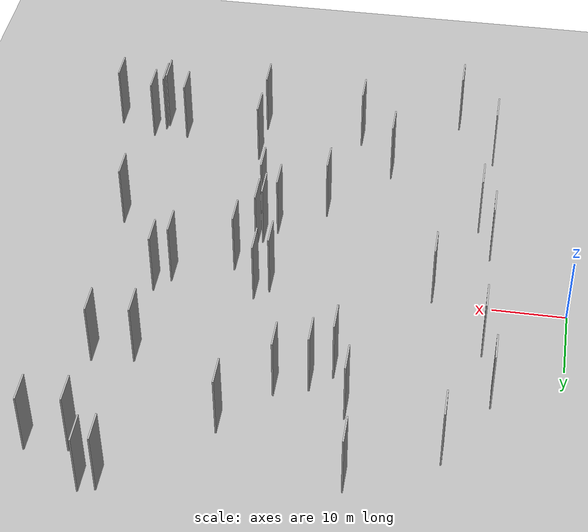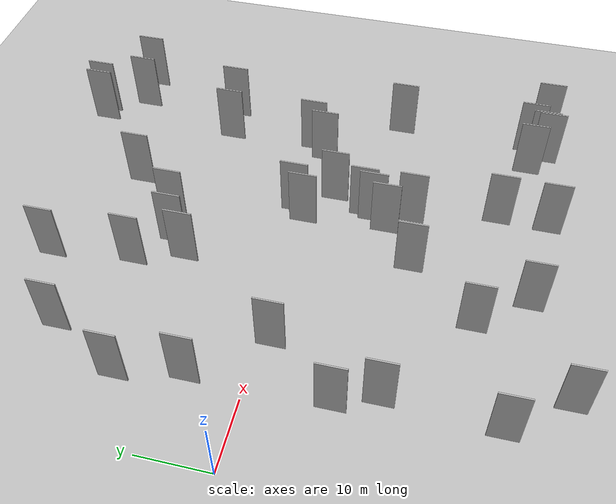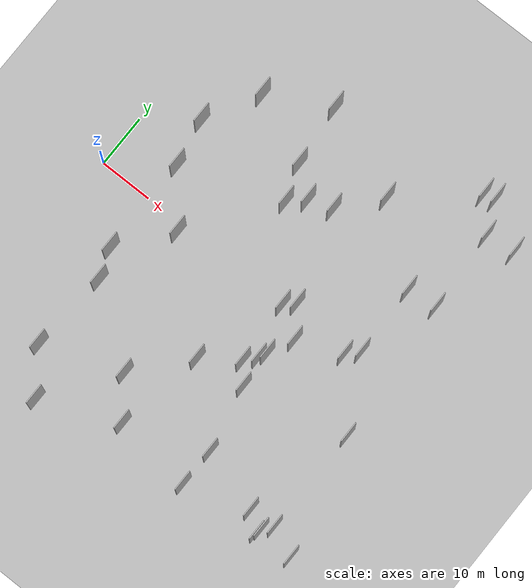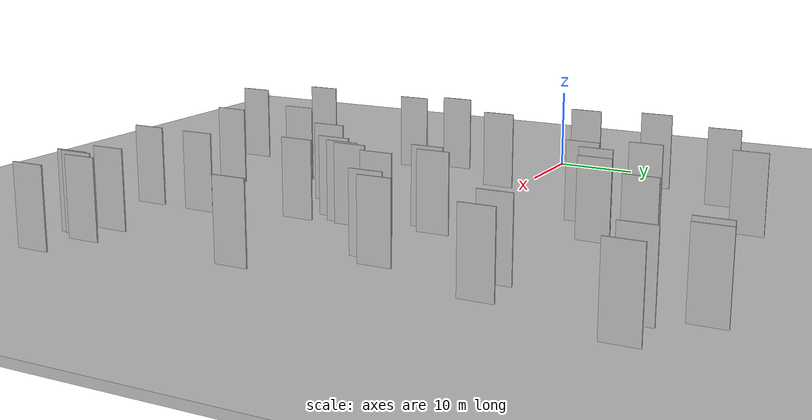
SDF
<?xml version="1.0" encoding="utf-8"?>

<sdf version="1.6">

   <world name="default">

      <gui fullscreen="0">

         <camera name="user_camera">

            <pose>-15 0 4.57585 0 0 0</pose>

            <view_controller>orbit</view_controller>

         </camera>

      </gui>

      <scene>

         <sky>

           <clouds>

             <speed>12</speed>

           </clouds>

         </sky>

         <ambient>0.4 0.4 0.4 1</ambient>

         <background>0.7 0.7 0.7 1</background>

         <shadows>1</shadows>

      </scene>

      <gravity>0 0 -9.8066</gravity>

      <magnetic_field>6e-06 2.3e-05 -4.2e-05</magnetic_field>

      <physics default="0" name="default_physics" type="ode">

         <ode>

            <solver>

               <type>quick</type>

               <iters>10</iters>

               <sor>1.0</sor>

               <use_dynamic_moi_rescaling>0</use_dynamic_moi_rescaling>

            </solver>

            <constraints>

               <cfm>0</cfm>

               <erp>0.2</erp>

               <contact_max_correcting_vel>100</contact_max_correcting_vel>

               <contact_surface_layer>0.001</contact_surface_layer>

            </constraints>

         </ode>

         <max_step_size>0.004</max_step_size>

         <real_time_factor>1</real_time_factor>

         <real_time_update_rate>250</real_time_update_rate>

      </physics>

      <light name="sun" type="directional">

         <cast_shadows>1</cast_shadows>

         <pose>0 0 10 0 0 0</pose>

         <diffuse>0.8 0.8 0.8 1</diffuse>

         <specular>0.2 0.2 0.2 1</specular>

         <attenuation>

            <range>1000</range>

            <constant>0.9</constant>

            <linear>0.01</linear>

            <quadratic>0.001</quadratic>

         </attenuation>

         <direction>-0.5 0.1 -0.9</direction>

      </light>

      <include>

         <name>ground_plane_1</name>

         <uri>model://HANNAS_ground_plane</uri>

         <pose>0 0 0  0 0 0</pose>

      </include>

      <include>

         <name>ground_plane_2</name>

         <uri>model://HANNAS_ground_plane</uri>

         <pose>100 0 0  0 0 0</pose>

      </include>

      <model name="HANNAS_wall_1">

         <static>1</static>

         <pose frame="">36.6619 18.0151 0.0 0.000000 0.000000 1.570796</pose>

         <link name="link">

            <pose frame="">0 0 5.00 0 0 0</pose>

            <collision name="collision">

               <geometry>

                  <box>

                     <size>4.00 0.2 10.00</size>

                  </box>

               </geometry>

               <max_contacts>10</max_contacts>

               <surface>

                  <contact>

                     <ode/>

                  </contact>

                  <bounce/>

                  <friction>

                     <torsional>

                        <ode/>

                     </torsional>

                     <ode/>

                  </friction>

               </surface>

            </collision>

            <visual name="visual">

               <cast_shadows>0</cast_shadows>

               <geometry>

                  <box>

                     <size>4.00 0.2 10.00</size>

                  </box>

               </geometry>

               <material>

                  <script>

                     <uri>model://HANNAS_wall/materials/scripts</uri>

                     <uri>model://HANNAS_wall/materials/textures</uri>

                     <name>vrc/HANNAS_wall</name>

                  </script>

               </material>

            </visual>

            <self_collide>0</self_collide>

            <enable_wind>0</enable_wind>

            <kinematic>0</kinematic>

         </link>

      </model>

      <model name="HANNAS_wall_2">

         <static>1</static>

         <pose frame="">55.3624 36.1691 0.0 0.000000 0.000000 1.570796</pose>

         <link name="link">

            <pose frame="">0 0 5.00 0 0 0</pose>

            <collision name="collision">

               <geometry>

                  <box>

                     <size>4.00 0.2 10.00</size>

                  </box>

               </geometry>

               <max_contacts>10</max_contacts>

               <surface>

                  <contact>

                     <ode/>

                  </contact>

                  <bounce/>

                  <friction>

                     <torsional>

                        <ode/>

                     </torsional>

                     <ode/>

                  </friction>

               </surface>

            </collision>

            <visual name="visual">

               <cast_shadows>0</cast_shadows>

               <geometry>

                  <box>

                     <size>4.00 0.2 10.00</size>

                  </box>

               </geometry>

               <material>

                  <script>

                     <uri>model://HANNAS_wall/materials/scripts</uri>

                     <uri>model://HANNAS_wall/materials/textures</uri>

                     <name>vrc/HANNAS_wall</name>

                  </script>

               </material>

            </visual>

            <self_collide>0</self_collide>

            <enable_wind>0</enable_wind>

            <kinematic>0</kinematic>

         </link>

      </model>

      <model name="HANNAS_wall_3">

         <static>1</static>

         <pose frame="">43.7757 -15.6567 0.0 0.000000 0.000000 1.570796</pose>

         <link name="link">

            <pose frame="">0 0 5.00 0 0 0</pose>

            <collision name="collision">

               <geometry>

                  <box>

                     <size>4.00 0.2 10.00</size>

                  </box>

               </geometry>

               <max_contacts>10</max_contacts>

               <surface>

                  <contact>

                     <ode/>

                  </contact>

                  <bounce/>

                  <friction>

                     <torsional>

                        <ode/>

                     </torsional>

                     <ode/>

                  </friction>

               </surface>

            </collision>

            <visual name="visual">

               <cast_shadows>0</cast_shadows>

               <geometry>

                  <box>

                     <size>4.00 0.2 10.00</size>

                  </box>

               </geometry>

               <material>

                  <script>

                     <uri>model://HANNAS_wall/materials/scripts</uri>

                     <uri>model://HANNAS_wall/materials/textures</uri>

                     <name>vrc/HANNAS_wall</name>

                  </script>

               </material>

            </visual>

            <self_collide>0</self_collide>

            <enable_wind>0</enable_wind>

            <kinematic>0</kinematic>

         </link>

      </model>

      <model name="HANNAS_wall_4">

         <static>1</static>

         <pose frame="">62.9942 -11.3751 0.0 0.000000 0.000000 1.570796</pose>

         <link name="link">

            <pose frame="">0 0 5.00 0 0 0</pose>

            <collision name="collision">

               <geometry>

                  <box>

                     <size>4.00 0.2 10.00</size>

                  </box>

               </geometry>

               <max_contacts>10</max_contacts>

               <surface>

                  <contact>

                     <ode/>

                  </contact>

                  <bounce/>

                  <friction>

                     <torsional>

                        <ode/>

                     </torsional>

                     <ode/>

                  </friction>

               </surface>

            </collision>

            <visual name="visual">

               <cast_shadows>0</cast_shadows>

               <geometry>

                  <box>

                     <size>4.00 0.2 10.00</size>

                  </box>

               </geometry>

               <material>

                  <script>

                     <uri>model://HANNAS_wall/materials/scripts</uri>

                     <uri>model://HANNAS_wall/materials/textures</uri>

                     <name>vrc/HANNAS_wall</name>

                  </script>

               </material>

            </visual>

            <self_collide>0</self_collide>

            <enable_wind>0</enable_wind>

            <kinematic>0</kinematic>

         </link>

      </model>

      <model name="HANNAS_wall_5">

         <static>1</static>

         <pose frame="">10.9348 -11.1061 0.0 0.000000 0.000000 1.570796</pose>

         <link name="link">

            <pose frame="">0 0 5.00 0 0 0</pose>

            <collision name="collision">

               <geometry>

                  <box>

                     <size>4.00 0.2 10.00</size>

                  </box>

               </geometry>

               <max_contacts>10</max_contacts>

               <surface>

                  <contact>

                     <ode/>

                  </contact>

                  <bounce/>

                  <friction>

                     <torsional>

                        <ode/>

                     </torsional>

                     <ode/>

                  </friction>

               </surface>

            </collision>

            <visual name="visual">

               <cast_shadows>0</cast_shadows>

               <geometry>

                  <box>

                     <size>4.00 0.2 10.00</size>

                  </box>

               </geometry>

               <material>

                  <script>

                     <uri>model://HANNAS_wall/materials/scripts</uri>

                     <uri>model://HANNAS_wall/materials/textures</uri>

                     <name>vrc/HANNAS_wall</name>

                  </script>

               </material>

            </visual>

            <self_collide>0</self_collide>

            <enable_wind>0</enable_wind>

            <kinematic>0</kinematic>

         </link>

      </model>

      <model name="HANNAS_wall_6">

         <static>1</static>

         <pose frame="">32.2538 16.5219 0.0 0.000000 0.000000 1.570796</pose>

         <link name="link">

            <pose frame="">0 0 5.00 0 0 0</pose>

            <collision name="collision">

               <geometry>

                  <box>

                     <size>4.00 0.2 10.00</size>

                  </box>

               </geometry>

               <max_contacts>10</max_contacts>

               <surface>

                  <contact>

                     <ode/>

                  </contact>

                  <bounce/>

                  <friction>

                     <torsional>

                        <ode/>

                     </torsional>

                     <ode/>

                  </friction>

               </surface>

            </collision>

            <visual name="visual">

               <cast_shadows>0</cast_shadows>

               <geometry>

                  <box>

                     <size>4.00 0.2 10.00</size>

                  </box>

               </geometry>

               <material>

                  <script>

                     <uri>model://HANNAS_wall/materials/scripts</uri>

                     <uri>model://HANNAS_wall/materials/textures</uri>

                     <name>vrc/HANNAS_wall</name>

                  </script>

               </material>

            </visual>

            <self_collide>0</self_collide>

            <enable_wind>0</enable_wind>

            <kinematic>0</kinematic>

         </link>

      </model>

      <model name="HANNAS_wall_7">

         <static>1</static>

         <pose frame="">62.9311 -31.2098 0.0 0.000000 0.000000 1.570796</pose>

         <link name="link">

            <pose frame="">0 0 5.00 0 0 0</pose>

            <collision name="collision">

               <geometry>

                  <box>

                     <size>4.00 0.2 10.00</size>

                  </box>

               </geometry>

               <max_contacts>10</max_contacts>

               <surface>

                  <contact>

                     <ode/>

                  </contact>

                  <bounce/>

                  <friction>

                     <torsional>

                        <ode/>

                     </torsional>

                     <ode/>

                  </friction>

               </surface>

            </collision>

            <visual name="visual">

               <cast_shadows>0</cast_shadows>

               <geometry>

                  <box>

                     <size>4.00 0.2 10.00</size>

                  </box>

               </geometry>

               <material>

                  <script>

                     <uri>model://HANNAS_wall/materials/scripts</uri>

                     <uri>model://HANNAS_wall/materials/textures</uri>

                     <name>vrc/HANNAS_wall</name>

                  </script>

               </material>

            </visual>

            <self_collide>0</self_collide>

            <enable_wind>0</enable_wind>

            <kinematic>0</kinematic>

         </link>

      </model>

      <model name="HANNAS_wall_8">

         <static>1</static>

         <pose frame="">61.4429 -33.0140 0.0 0.000000 0.000000 1.570796</pose>

         <link name="link">

            <pose frame="">0 0 5.00 0 0 0</pose>

            <collision name="collision">

               <geometry>

                  <box>

                     <size>4.00 0.2 10.00</size>

                  </box>

               </geometry>

               <max_contacts>10</max_contacts>

               <surface>

                  <contact>

                     <ode/>

                  </contact>

                  <bounce/>

                  <friction>

                     <torsional>

                        <ode/>

                     </torsional>

                     <ode/>

                  </friction>

               </surface>

            </collision>

            <visual name="visual">

               <cast_shadows>0</cast_shadows>

               <geometry>

                  <box>

                     <size>4.00 0.2 10.00</size>

                  </box>

               </geometry>

               <material>

                  <script>

                     <uri>model://HANNAS_wall/materials/scripts</uri>

                     <uri>model://HANNAS_wall/materials/textures</uri>

                     <name>vrc/HANNAS_wall</name>

                  </script>

               </material>

            </visual>

            <self_collide>0</self_collide>

            <enable_wind>0</enable_wind>

            <kinematic>0</kinematic>

         </link>

      </model>

      <model name="HANNAS_wall_9">

         <static>1</static>

         <pose frame="">17.4515 -39.3965 0.0 0.000000 0.000000 1.570796</pose>

         <link name="link">

            <pose frame="">0 0 5.00 0 0 0</pose>

            <collision name="collision">

               <geometry>

                  <box>

                     <size>4.00 0.2 10.00</size>

                  </box>

               </geometry>

               <max_contacts>10</max_contacts>

               <surface>

                  <contact>

                     <ode/>

                  </contact>

                  <bounce/>

                  <friction>

                     <torsional>

                        <ode/>

                     </torsional>

                     <ode/>

                  </friction>

               </surface>

            </collision>

            <visual name="visual">

               <cast_shadows>0</cast_shadows>

               <geometry>

                  <box>

                     <size>4.00 0.2 10.00</size>

                  </box>

               </geometry>

               <material>

                  <script>

                     <uri>model://HANNAS_wall/materials/scripts</uri>

                     <uri>model://HANNAS_wall/materials/textures</uri>

                     <name>vrc/HANNAS_wall</name>

                  </script>

               </material>

            </visual>

            <self_collide>0</self_collide>

            <enable_wind>0</enable_wind>

            <kinematic>0</kinematic>

         </link>

      </model>

      <model name="HANNAS_wall_10">

         <static>1</static>

         <pose frame="">29.4541 13.9202 0.0 0.000000 0.000000 1.570796</pose>

         <link name="link">

            <pose frame="">0 0 5.00 0 0 0</pose>

            <collision name="collision">

               <geometry>

                  <box>

                     <size>4.00 0.2 10.00</size>

                  </box>

               </geometry>

               <max_contacts>10</max_contacts>

               <surface>

                  <contact>

                     <ode/>

                  </contact>

                  <bounce/>

                  <friction>

                     <torsional>

                        <ode/>

                     </torsional>

                     <ode/>

                  </friction>

               </surface>

            </collision>

            <visual name="visual">

               <cast_shadows>0</cast_shadows>

               <geometry>

                  <box>

                     <size>4.00 0.2 10.00</size>

                  </box>

               </geometry>

               <material>

                  <script>

                     <uri>model://HANNAS_wall/materials/scripts</uri>

                     <uri>model://HANNAS_wall/materials/textures</uri>

                     <name>vrc/HANNAS_wall</name>

                  </script>

               </material>

            </visual>

            <self_collide>0</self_collide>

            <enable_wind>0</enable_wind>

            <kinematic>0</kinematic>

         </link>

      </model>

      <model name="HANNAS_wall_11">

         <static>1</static>

         <pose frame="">55.9009 1.5364 0.0 0.000000 0.000000 1.570796</pose>

         <link name="link">

            <pose frame="">0 0 5.00 0 0 0</pose>

            <collision name="collision">

               <geometry>

                  <box>

                     <size>4.00 0.2 10.00</size>

                  </box>

               </geometry>

               <max_contacts>10</max_contacts>

               <surface>

                  <contact>

                     <ode/>

                  </contact>

                  <bounce/>

                  <friction>

                     <torsional>

                        <ode/>

                     </torsional>

                     <ode/>

                  </friction>

               </surface>

            </collision>

            <visual name="visual">

               <cast_shadows>0</cast_shadows>

               <geometry>

                  <box>

                     <size>4.00 0.2 10.00</size>

                  </box>

               </geometry>

               <material>

                  <script>

                     <uri>model://HANNAS_wall/materials/scripts</uri>

                     <uri>model://HANNAS_wall/materials/textures</uri>

                     <name>vrc/HANNAS_wall</name>

                  </script>

               </material>

            </visual>

            <self_collide>0</self_collide>

            <enable_wind>0</enable_wind>

            <kinematic>0</kinematic>

         </link>

      </model>

      <model name="HANNAS_wall_12">

         <static>1</static>

         <pose frame="">40.2201 -0.5171 0.0 0.000000 0.000000 1.570796</pose>

         <link name="link">

            <pose frame="">0 0 5.00 0 0 0</pose>

            <collision name="collision">

               <geometry>

                  <box>

                     <size>4.00 0.2 10.00</size>

                  </box>

               </geometry>

               <max_contacts>10</max_contacts>

               <surface>

                  <contact>

                     <ode/>

                  </contact>

                  <bounce/>

                  <friction>

                     <torsional>

                        <ode/>

                     </torsional>

                     <ode/>

                  </friction>

               </surface>

            </collision>

            <visual name="visual">

               <cast_shadows>0</cast_shadows>

               <geometry>

                  <box>

                     <size>4.00 0.2 10.00</size>

                  </box>

               </geometry>

               <material>

                  <script>

                     <uri>model://HANNAS_wall/materials/scripts</uri>

                     <uri>model://HANNAS_wall/materials/textures</uri>

                     <name>vrc/HANNAS_wall</name>

                  </script>

               </material>

            </visual>

            <self_collide>0</self_collide>

            <enable_wind>0</enable_wind>

            <kinematic>0</kinematic>

         </link>

      </model>

      <model name="HANNAS_wall_13">

         <static>1</static>

         <pose frame="">65.6684 31.3403 0.0 0.000000 0.000000 1.570796</pose>

         <link name="link">

            <pose frame="">0 0 5.00 0 0 0</pose>

            <collision name="collision">

               <geometry>

                  <box>

                     <size>4.00 0.2 10.00</size>

                  </box>

               </geometry>

               <max_contacts>10</max_contacts>

               <surface>

                  <contact>

                     <ode/>

                  </contact>

                  <bounce/>

                  <friction>

                     <torsional>

                        <ode/>

                     </torsional>

                     <ode/>

                  </friction>

               </surface>

            </collision>

            <visual name="visual">

               <cast_shadows>0</cast_shadows>

               <geometry>

                  <box>

                     <size>4.00 0.2 10.00</size>

                  </box>

               </geometry>

               <material>

                  <script>

                     <uri>model://HANNAS_wall/materials/scripts</uri>

                     <uri>model://HANNAS_wall/materials/textures</uri>

                     <name>vrc/HANNAS_wall</name>

                  </script>

               </material>

            </visual>

            <self_collide>0</self_collide>

            <enable_wind>0</enable_wind>

            <kinematic>0</kinematic>

         </link>

      </model>

      <model name="HANNAS_wall_14">

         <static>1</static>

         <pose frame="">42.0989 1.1696 0.0 0.000000 0.000000 1.570796</pose>

         <link name="link">

            <pose frame="">0 0 5.00 0 0 0</pose>

            <collision name="collision">

               <geometry>

                  <box>

                     <size>4.00 0.2 10.00</size>

                  </box>

               </geometry>

               <max_contacts>10</max_contacts>

               <surface>

                  <contact>

                     <ode/>

                  </contact>

                  <bounce/>

                  <friction>

                     <torsional>

                        <ode/>

                     </torsional>

                     <ode/>

                  </friction>

               </surface>

            </collision>

            <visual name="visual">

               <cast_shadows>0</cast_shadows>

               <geometry>

                  <box>

                     <size>4.00 0.2 10.00</size>

                  </box>

               </geometry>

               <material>

                  <script>

                     <uri>model://HANNAS_wall/materials/scripts</uri>

                     <uri>model://HANNAS_wall/materials/textures</uri>

                     <name>vrc/HANNAS_wall</name>

                  </script>

               </material>

            </visual>

            <self_collide>0</self_collide>

            <enable_wind>0</enable_wind>

            <kinematic>0</kinematic>

         </link>

      </model>

      <model name="HANNAS_wall_15">

         <static>1</static>

         <pose frame="">26.4778 -26.4797 0.0 0.000000 0.000000 1.570796</pose>

         <link name="link">

            <pose frame="">0 0 5.00 0 0 0</pose>

            <collision name="collision">

               <geometry>

                  <box>

                     <size>4.00 0.2 10.00</size>

                  </box>

               </geometry>

               <max_contacts>10</max_contacts>

               <surface>

                  <contact>

                     <ode/>

                  </contact>

                  <bounce/>

                  <friction>

                     <torsional>

                        <ode/>

                     </torsional>

                     <ode/>

                  </friction>

               </surface>

            </collision>

            <visual name="visual">

               <cast_shadows>0</cast_shadows>

               <geometry>

                  <box>

                     <size>4.00 0.2 10.00</size>

                  </box>

               </geometry>

               <material>

                  <script>

                     <uri>model://HANNAS_wall/materials/scripts</uri>

                     <uri>model://HANNAS_wall/materials/textures</uri>

                     <name>vrc/HANNAS_wall</name>

                  </script>

               </material>

            </visual>

            <self_collide>0</self_collide>

            <enable_wind>0</enable_wind>

            <kinematic>0</kinematic>

         </link>

      </model>

      <model name="HANNAS_wall_16">

         <static>1</static>

         <pose frame="">46.3663 -27.9325 0.0 0.000000 0.000000 1.570796</pose>

         <link name="link">

            <pose frame="">0 0 5.00 0 0 0</pose>

            <collision name="collision">

               <geometry>

                  <box>

                     <size>4.00 0.2 10.00</size>

                  </box>

               </geometry>

               <max_contacts>10</max_contacts>

               <surface>

                  <contact>

                     <ode/>

                  </contact>

                  <bounce/>

                  <friction>

                     <torsional>

                        <ode/>

                     </torsional>

                     <ode/>

                  </friction>

               </surface>

            </collision>

            <visual name="visual">

               <cast_shadows>0</cast_shadows>

               <geometry>

                  <box>

                     <size>4.00 0.2 10.00</size>

                  </box>

               </geometry>

               <material>

                  <script>

                     <uri>model://HANNAS_wall/materials/scripts</uri>

                     <uri>model://HANNAS_wall/materials/textures</uri>

                     <name>vrc/HANNAS_wall</name>

                  </script>

               </material>

            </visual>

            <self_collide>0</self_collide>

            <enable_wind>0</enable_wind>

            <kinematic>0</kinematic>

         </link>

      </model>

      <model name="HANNAS_wall_17">

         <static>1</static>

         <pose frame="">11.8720 -31.6912 0.0 0.000000 0.000000 1.570796</pose>

         <link name="link">

            <pose frame="">0 0 5.00 0 0 0</pose>

            <collision name="collision">

               <geometry>

                  <box>

                     <size>4.00 0.2 10.00</size>

                  </box>

               </geometry>

               <max_contacts>10</max_contacts>

               <surface>

                  <contact>

                     <ode/>

                  </contact>

                  <bounce/>

                  <friction>

                     <torsional>

                        <ode/>

                     </torsional>

                     <ode/>

                  </friction>

               </surface>

            </collision>

            <visual name="visual">

               <cast_shadows>0</cast_shadows>

               <geometry>

                  <box>

                     <size>4.00 0.2 10.00</size>

                  </box>

               </geometry>

               <material>

                  <script>

                     <uri>model://HANNAS_wall/materials/scripts</uri>

                     <uri>model://HANNAS_wall/materials/textures</uri>

                     <name>vrc/HANNAS_wall</name>

                  </script>

               </material>

            </visual>

            <self_collide>0</self_collide>

            <enable_wind>0</enable_wind>

            <kinematic>0</kinematic>

         </link>

      </model>

      <model name="HANNAS_wall_18">

         <static>1</static>

         <pose frame="">57.9816 -31.4442 0.0 0.000000 0.000000 1.570796</pose>

         <link name="link">

            <pose frame="">0 0 5.00 0 0 0</pose>

            <collision name="collision">

               <geometry>

                  <box>

                     <size>4.00 0.2 10.00</size>

                  </box>

               </geometry>

               <max_contacts>10</max_contacts>

               <surface>

                  <contact>

                     <ode/>

                  </contact>

                  <bounce/>

                  <friction>

                     <torsional>

                        <ode/>

                     </torsional>

                     <ode/>

                  </friction>

               </surface>

            </collision>

            <visual name="visual">

               <cast_shadows>0</cast_shadows>

               <geometry>

                  <box>

                     <size>4.00 0.2 10.00</size>

                  </box>

               </geometry>

               <material>

                  <script>

                     <uri>model://HANNAS_wall/materials/scripts</uri>

                     <uri>model://HANNAS_wall/materials/textures</uri>

                     <name>vrc/HANNAS_wall</name>

                  </script>

               </material>

            </visual>

            <self_collide>0</self_collide>

            <enable_wind>0</enable_wind>

            <kinematic>0</kinematic>

         </link>

      </model>

      <model name="HANNAS_wall_19">

         <static>1</static>

         <pose frame="">27.1454 20.6249 0.0 0.000000 0.000000 1.570796</pose>

         <link name="link">

            <pose frame="">0 0 5.00 0 0 0</pose>

            <collision name="collision">

               <geometry>

                  <box>

                     <size>4.00 0.2 10.00</size>

                  </box>

               </geometry>

               <max_contacts>10</max_contacts>

               <surface>

                  <contact>

                     <ode/>

                  </contact>

                  <bounce/>

                  <friction>

                     <torsional>

                        <ode/>

                     </torsional>

                     <ode/>

                  </friction>

               </surface>

            </collision>

            <visual name="visual">

               <cast_shadows>0</cast_shadows>

               <geometry>

                  <box>

                     <size>4.00 0.2 10.00</size>

                  </box>

               </geometry>

               <material>

                  <script>

                     <uri>model://HANNAS_wall/materials/scripts</uri>

                     <uri>model://HANNAS_wall/materials/textures</uri>

                     <name>vrc/HANNAS_wall</name>

                  </script>

               </material>

            </visual>

            <self_collide>0</self_collide>

            <enable_wind>0</enable_wind>

            <kinematic>0</kinematic>

         </link>

      </model>

      <model name="HANNAS_wall_20">

         <static>1</static>

         <pose frame="">61.1534 -33.8624 0.0 0.000000 0.000000 1.570796</pose>

         <link name="link">

            <pose frame="">0 0 5.00 0 0 0</pose>

            <collision name="collision">

               <geometry>

                  <box>

                     <size>4.00 0.2 10.00</size>

                  </box>

               </geometry>

               <max_contacts>10</max_contacts>

               <surface>

                  <contact>

                     <ode/>

                  </contact>

                  <bounce/>

                  <friction>

                     <torsional>

                        <ode/>

                     </torsional>

                     <ode/>

                  </friction>

               </surface>

            </collision>

            <visual name="visual">

               <cast_shadows>0</cast_shadows>

               <geometry>

                  <box>

                     <size>4.00 0.2 10.00</size>

                  </box>

               </geometry>

               <material>

                  <script>

                     <uri>model://HANNAS_wall/materials/scripts</uri>

                     <uri>model://HANNAS_wall/materials/textures</uri>

                     <name>vrc/HANNAS_wall</name>

                  </script>

               </material>

            </visual>

            <self_collide>0</self_collide>

            <enable_wind>0</enable_wind>

            <kinematic>0</kinematic>

         </link>

      </model>

      <model name="HANNAS_wall_21">

         <static>1</static>

         <pose frame="">40.9629 -12.3242 0.0 0.000000 0.000000 1.570796</pose>

         <link name="link">

            <pose frame="">0 0 5.00 0 0 0</pose>

            <collision name="collision">

               <geometry>

                  <box>

                     <size>4.00 0.2 10.00</size>

                  </box>

               </geometry>

               <max_contacts>10</max_contacts>

               <surface>

                  <contact>

                     <ode/>

                  </contact>

                  <bounce/>

                  <friction>

                     <torsional>

                        <ode/>

                     </torsional>

                     <ode/>

                  </friction>

               </surface>

            </collision>

            <visual name="visual">

               <cast_shadows>0</cast_shadows>

               <geometry>

                  <box>

                     <size>4.00 0.2 10.00</size>

                  </box>

               </geometry>

               <material>

                  <script>

                     <uri>model://HANNAS_wall/materials/scripts</uri>

                     <uri>model://HANNAS_wall/materials/textures</uri>

                     <name>vrc/HANNAS_wall</name>

                  </script>

               </material>

            </visual>

            <self_collide>0</self_collide>

            <enable_wind>0</enable_wind>

            <kinematic>0</kinematic>

         </link>

      </model>

      <model name="HANNAS_wall_22">

         <static>1</static>

         <pose frame="">14.4910 26.2210 0.0 0.000000 0.000000 1.570796</pose>

         <link name="link">

            <pose frame="">0 0 5.00 0 0 0</pose>

            <collision name="collision">

               <geometry>

                  <box>

                     <size>4.00 0.2 10.00</size>

                  </box>

               </geometry>

               <max_contacts>10</max_contacts>

               <surface>

                  <contact>

                     <ode/>

                  </contact>

                  <bounce/>

                  <friction>

                     <torsional>

                        <ode/>

                     </torsional>

                     <ode/>

                  </friction>

               </surface>

            </collision>

            <visual name="visual">

               <cast_shadows>0</cast_shadows>

               <geometry>

                  <box>

                     <size>4.00 0.2 10.00</size>

                  </box>

               </geometry>

               <material>

                  <script>

                     <uri>model://HANNAS_wall/materials/scripts</uri>

                     <uri>model://HANNAS_wall/materials/textures</uri>

                     <name>vrc/HANNAS_wall</name>

                  </script>

               </material>

            </visual>

            <self_collide>0</self_collide>

            <enable_wind>0</enable_wind>

            <kinematic>0</kinematic>

         </link>

      </model>

      <model name="HANNAS_wall_23">

         <static>1</static>

         <pose frame="">42.6903 25.2070 0.0 0.000000 0.000000 1.570796</pose>

         <link name="link">

            <pose frame="">0 0 5.00 0 0 0</pose>

            <collision name="collision">

               <geometry>

                  <box>

                     <size>4.00 0.2 10.00</size>

                  </box>

               </geometry>

               <max_contacts>10</max_contacts>

               <surface>

                  <contact>

                     <ode/>

                  </contact>

                  <bounce/>

                  <friction>

                     <torsional>

                        <ode/>

                     </torsional>

                     <ode/>

                  </friction>

               </surface>

            </collision>

            <visual name="visual">

               <cast_shadows>0</cast_shadows>

               <geometry>

                  <box>

                     <size>4.00 0.2 10.00</size>

                  </box>

               </geometry>

               <material>

                  <script>

                     <uri>model://HANNAS_wall/materials/scripts</uri>

                     <uri>model://HANNAS_wall/materials/textures</uri>

                     <name>vrc/HANNAS_wall</name>

                  </script>

               </material>

            </visual>

            <self_collide>0</self_collide>

            <enable_wind>0</enable_wind>

            <kinematic>0</kinematic>

         </link>

      </model>

      <model name="HANNAS_wall_24">

         <static>1</static>

         <pose frame="">25.8785 32.1524 0.0 0.000000 0.000000 1.570796</pose>

         <link name="link">

            <pose frame="">0 0 5.00 0 0 0</pose>

            <collision name="collision">

               <geometry>

                  <box>

                     <size>4.00 0.2 10.00</size>

                  </box>

               </geometry>

               <max_contacts>10</max_contacts>

               <surface>

                  <contact>

                     <ode/>

                  </contact>

                  <bounce/>

                  <friction>

                     <torsional>

                        <ode/>

                     </torsional>

                     <ode/>

                  </friction>

               </surface>

            </collision>

            <visual name="visual">

               <cast_shadows>0</cast_shadows>

               <geometry>

                  <box>

                     <size>4.00 0.2 10.00</size>

                  </box>

               </geometry>

               <material>

                  <script>

                     <uri>model://HANNAS_wall/materials/scripts</uri>

                     <uri>model://HANNAS_wall/materials/textures</uri>

                     <name>vrc/HANNAS_wall</name>

                  </script>

               </material>

            </visual>

            <self_collide>0</self_collide>

            <enable_wind>0</enable_wind>

            <kinematic>0</kinematic>

         </link>

      </model>

      <model name="HANNAS_wall_25">

         <static>1</static>

         <pose frame="">10.7951 7.3212 0.0 0.000000 0.000000 1.570796</pose>

         <link name="link">

            <pose frame="">0 0 5.00 0 0 0</pose>

            <collision name="collision">

               <geometry>

                  <box>

                     <size>4.00 0.2 10.00</size>

                  </box>

               </geometry>

               <max_contacts>10</max_contacts>

               <surface>

                  <contact>

                     <ode/>

                  </contact>

                  <bounce/>

                  <friction>

                     <torsional>

                        <ode/>

                     </torsional>

                     <ode/>

                  </friction>

               </surface>

            </collision>

            <visual name="visual">

               <cast_shadows>0</cast_shadows>

               <geometry>

                  <box>

                     <size>4.00 0.2 10.00</size>

                  </box>

               </geometry>

               <material>

                  <script>

                     <uri>model://HANNAS_wall/materials/scripts</uri>

                     <uri>model://HANNAS_wall/materials/textures</uri>

                     <name>vrc/HANNAS_wall</name>

                  </script>

               </material>

            </visual>

            <self_collide>0</self_collide>

            <enable_wind>0</enable_wind>

            <kinematic>0</kinematic>

         </link>

      </model>

      <model name="HANNAS_wall_26">

         <static>1</static>

         <pose frame="">46.2379 -35.1601 0.0 0.000000 0.000000 1.570796</pose>

         <link name="link">

            <pose frame="">0 0 5.00 0 0 0</pose>

            <collision name="collision">

               <geometry>

                  <box>

                     <size>4.00 0.2 10.00</size>

                  </box>

               </geometry>

               <max_contacts>10</max_contacts>

               <surface>

                  <contact>

                     <ode/>

                  </contact>

                  <bounce/>

                  <friction>

                     <torsional>

                        <ode/>

                     </torsional>

                     <ode/>

                  </friction>

               </surface>

            </collision>

            <visual name="visual">

               <cast_shadows>0</cast_shadows>

               <geometry>

                  <box>

                     <size>4.00 0.2 10.00</size>

                  </box>

               </geometry>

               <material>

                  <script>

                     <uri>model://HANNAS_wall/materials/scripts</uri>

                     <uri>model://HANNAS_wall/materials/textures</uri>

                     <name>vrc/HANNAS_wall</name>

                  </script>

               </material>

            </visual>

            <self_collide>0</self_collide>

            <enable_wind>0</enable_wind>

            <kinematic>0</kinematic>

         </link>

      </model>

      <model name="HANNAS_wall_27">

         <static>1</static>

         <pose frame="">57.4898 36.6878 0.0 0.000000 0.000000 1.570796</pose>

         <link name="link">

            <pose frame="">0 0 5.00 0 0 0</pose>

            <collision name="collision">

               <geometry>

                  <box>

                     <size>4.00 0.2 10.00</size>

                  </box>

               </geometry>

               <max_contacts>10</max_contacts>

               <surface>

                  <contact>

                     <ode/>

                  </contact>

                  <bounce/>

                  <friction>

                     <torsional>

                        <ode/>

                     </torsional>

                     <ode/>

                  </friction>

               </surface>

            </collision>

            <visual name="visual">

               <cast_shadows>0</cast_shadows>

               <geometry>

                  <box>

                     <size>4.00 0.2 10.00</size>

                  </box>

               </geometry>

               <material>

                  <script>

                     <uri>model://HANNAS_wall/materials/scripts</uri>

                     <uri>model://HANNAS_wall/materials/textures</uri>

                     <name>vrc/HANNAS_wall</name>

                  </script>

               </material>

            </visual>

            <self_collide>0</self_collide>

            <enable_wind>0</enable_wind>

            <kinematic>0</kinematic>

         </link>

      </model>

      <model name="HANNAS_wall_28">

         <static>1</static>

         <pose frame="">53.8329 -0.6480 0.0 0.000000 0.000000 1.570796</pose>

         <link name="link">

            <pose frame="">0 0 5.00 0 0 0</pose>

            <collision name="collision">

               <geometry>

                  <box>

                     <size>4.00 0.2 10.00</size>

                  </box>

               </geometry>

               <max_contacts>10</max_contacts>

               <surface>

                  <contact>

                     <ode/>

                  </contact>

                  <bounce/>

                  <friction>

                     <torsional>

                        <ode/>

                     </torsional>

                     <ode/>

                  </friction>

               </surface>

            </collision>

            <visual name="visual">

               <cast_shadows>0</cast_shadows>

               <geometry>

                  <box>

                     <size>4.00 0.2 10.00</size>

                  </box>

               </geometry>

               <material>

                  <script>

                     <uri>model://HANNAS_wall/materials/scripts</uri>

                     <uri>model://HANNAS_wall/materials/textures</uri>

                     <name>vrc/HANNAS_wall</name>

                  </script>

               </material>

            </visual>

            <self_collide>0</self_collide>

            <enable_wind>0</enable_wind>

            <kinematic>0</kinematic>

         </link>

      </model>

      <model name="HANNAS_wall_29">

         <static>1</static>

         <pose frame="">42.7277 -10.1764 0.0 0.000000 0.000000 1.570796</pose>

         <link name="link">

            <pose frame="">0 0 5.00 0 0 0</pose>

            <collision name="collision">

               <geometry>

                  <box>

                     <size>4.00 0.2 10.00</size>

                  </box>

               </geometry>

               <max_contacts>10</max_contacts>

               <surface>

                  <contact>

                     <ode/>

                  </contact>

                  <bounce/>

                  <friction>

                     <torsional>

                        <ode/>

                     </torsional>

                     <ode/>

                  </friction>

               </surface>

            </collision>

            <visual name="visual">

               <cast_shadows>0</cast_shadows>

               <geometry>

                  <box>

                     <size>4.00 0.2 10.00</size>

                  </box>

               </geometry>

               <material>

                  <script>

                     <uri>model://HANNAS_wall/materials/scripts</uri>

                     <uri>model://HANNAS_wall/materials/textures</uri>

                     <name>vrc/HANNAS_wall</name>

                  </script>

               </material>

            </visual>

            <self_collide>0</self_collide>

            <enable_wind>0</enable_wind>

            <kinematic>0</kinematic>

         </link>

      </model>

      <model name="HANNAS_wall_30">

         <static>1</static>

         <pose frame="">12.9200 -16.6532 0.0 0.000000 0.000000 1.570796</pose>

         <link name="link">

            <pose frame="">0 0 5.00 0 0 0</pose>

            <collision name="collision">

               <geometry>

                  <box>

                     <size>4.00 0.2 10.00</size>

                  </box>

               </geometry>

               <max_contacts>10</max_contacts>

               <surface>

                  <contact>

                     <ode/>

                  </contact>

                  <bounce/>

                  <friction>

                     <torsional>

                        <ode/>

                     </torsional>

                     <ode/>

                  </friction>

               </surface>

            </collision>

            <visual name="visual">

               <cast_shadows>0</cast_shadows>

               <geometry>

                  <box>

                     <size>4.00 0.2 10.00</size>

                  </box>

               </geometry>

               <material>

                  <script>

                     <uri>model://HANNAS_wall/materials/scripts</uri>

                     <uri>model://HANNAS_wall/materials/textures</uri>

                     <name>vrc/HANNAS_wall</name>

                  </script>

               </material>

            </visual>

            <self_collide>0</self_collide>

            <enable_wind>0</enable_wind>

            <kinematic>0</kinematic>

         </link>

      </model>

      <model name="HANNAS_wall_31">

         <static>1</static>

         <pose frame="">45.6743 -4.0563 0.0 0.000000 0.000000 1.570796</pose>

         <link name="link">

            <pose frame="">0 0 5.00 0 0 0</pose>

            <collision name="collision">

               <geometry>

                  <box>

                     <size>4.00 0.2 10.00</size>

                  </box>

               </geometry>

               <max_contacts>10</max_contacts>

               <surface>

                  <contact>

                     <ode/>

                  </contact>

                  <bounce/>

                  <friction>

                     <torsional>

                        <ode/>

                     </torsional>

                     <ode/>

                  </friction>

               </surface>

            </collision>

            <visual name="visual">

               <cast_shadows>0</cast_shadows>

               <geometry>

                  <box>

                     <size>4.00 0.2 10.00</size>

                  </box>

               </geometry>

               <material>

                  <script>

                     <uri>model://HANNAS_wall/materials/scripts</uri>

                     <uri>model://HANNAS_wall/materials/textures</uri>

                     <name>vrc/HANNAS_wall</name>

                  </script>

               </material>

            </visual>

            <self_collide>0</self_collide>

            <enable_wind>0</enable_wind>

            <kinematic>0</kinematic>

         </link>

      </model>

      <model name="HANNAS_wall_32">

         <static>1</static>

         <pose frame="">61.0808 15.4924 0.0 0.000000 0.000000 1.570796</pose>

         <link name="link">

            <pose frame="">0 0 5.00 0 0 0</pose>

            <collision name="collision">

               <geometry>

                  <box>

                     <size>4.00 0.2 10.00</size>

                  </box>

               </geometry>

               <max_contacts>10</max_contacts>

               <surface>

                  <contact>

                     <ode/>

                  </contact>

                  <bounce/>

                  <friction>

                     <torsional>

                        <ode/>

                     </torsional>

                     <ode/>

                  </friction>

               </surface>

            </collision>

            <visual name="visual">

               <cast_shadows>0</cast_shadows>

               <geometry>

                  <box>

                     <size>4.00 0.2 10.00</size>

                  </box>

               </geometry>

               <material>

                  <script>

                     <uri>model://HANNAS_wall/materials/scripts</uri>

                     <uri>model://HANNAS_wall/materials/textures</uri>

                     <name>vrc/HANNAS_wall</name>

                  </script>

               </material>

            </visual>

            <self_collide>0</self_collide>

            <enable_wind>0</enable_wind>

            <kinematic>0</kinematic>

         </link>

      </model>

      <model name="HANNAS_wall_33">

         <static>1</static>

         <pose frame="">43.4532 -8.7534 0.0 0.000000 0.000000 1.570796</pose>

         <link name="link">

            <pose frame="">0 0 5.00 0 0 0</pose>

            <collision name="collision">

               <geometry>

                  <box>

                     <size>4.00 0.2 10.00</size>

                  </box>

               </geometry>

               <max_contacts>10</max_contacts>

               <surface>

                  <contact>

                     <ode/>

                  </contact>

                  <bounce/>

                  <friction>

                     <torsional>

                        <ode/>

                     </torsional>

                     <ode/>

                  </friction>

               </surface>

            </collision>

            <visual name="visual">

               <cast_shadows>0</cast_shadows>

               <geometry>

                  <box>

                     <size>4.00 0.2 10.00</size>

                  </box>

               </geometry>

               <material>

                  <script>

                     <uri>model://HANNAS_wall/materials/scripts</uri>

                     <uri>model://HANNAS_wall/materials/textures</uri>

                     <name>vrc/HANNAS_wall</name>

                  </script>

               </material>

            </visual>

            <self_collide>0</self_collide>

            <enable_wind>0</enable_wind>

            <kinematic>0</kinematic>

         </link>

      </model>

      <model name="HANNAS_wall_34">

         <static>1</static>

         <pose frame="">34.6157 -16.8849 0.0 0.000000 0.000000 1.570796</pose>

         <link name="link">

            <pose frame="">0 0 5.00 0 0 0</pose>

            <collision name="collision">

               <geometry>

                  <box>

                     <size>4.00 0.2 10.00</size>

                  </box>

               </geometry>

               <max_contacts>10</max_contacts>

               <surface>

                  <contact>

                     <ode/>

                  </contact>

                  <bounce/>

                  <friction>

                     <torsional>

                        <ode/>

                     </torsional>

                     <ode/>

                  </friction>

               </surface>

            </collision>

            <visual name="visual">

               <cast_shadows>0</cast_shadows>

               <geometry>

                  <box>

                     <size>4.00 0.2 10.00</size>

                  </box>

               </geometry>

               <material>

                  <script>

                     <uri>model://HANNAS_wall/materials/scripts</uri>

                     <uri>model://HANNAS_wall/materials/textures</uri>

                     <name>vrc/HANNAS_wall</name>

                  </script>

               </material>

            </visual>

            <self_collide>0</self_collide>

            <enable_wind>0</enable_wind>

            <kinematic>0</kinematic>

         </link>

      </model>

      <model name="HANNAS_wall_35">

         <static>1</static>

         <pose frame="">68.2952 -33.5049 0.0 0.000000 0.000000 1.570796</pose>

         <link name="link">

            <pose frame="">0 0 5.00 0 0 0</pose>

            <collision name="collision">

               <geometry>

                  <box>

                     <size>4.00 0.2 10.00</size>

                  </box>

               </geometry>

               <max_contacts>10</max_contacts>

               <surface>

                  <contact>

                     <ode/>

                  </contact>

                  <bounce/>

                  <friction>

                     <torsional>

                        <ode/>

                     </torsional>

                     <ode/>

                  </friction>

               </surface>

            </collision>

            <visual name="visual">

               <cast_shadows>0</cast_shadows>

               <geometry>

                  <box>

                     <size>4.00 0.2 10.00</size>

                  </box>

               </geometry>

               <material>

                  <script>

                     <uri>model://HANNAS_wall/materials/scripts</uri>

                     <uri>model://HANNAS_wall/materials/textures</uri>

                     <name>vrc/HANNAS_wall</name>

                  </script>

               </material>

            </visual>

            <self_collide>0</self_collide>

            <enable_wind>0</enable_wind>

            <kinematic>0</kinematic>

         </link>

      </model>

      <model name="HANNAS_wall_36">

         <static>1</static>

         <pose frame="">31.6762 -33.4752 0.0 0.000000 0.000000 1.570796</pose>

         <link name="link">

            <pose frame="">0 0 5.00 0 0 0</pose>

            <collision name="collision">

               <geometry>

                  <box>

                     <size>4.00 0.2 10.00</size>

                  </box>

               </geometry>

               <max_contacts>10</max_contacts>

               <surface>

                  <contact>

                     <ode/>

                  </contact>

                  <bounce/>

                  <friction>

                     <torsional>

                        <ode/>

                     </torsional>

                     <ode/>

                  </friction>

               </surface>

            </collision>

            <visual name="visual">

               <cast_shadows>0</cast_shadows>

               <geometry>

                  <box>

                     <size>4.00 0.2 10.00</size>

                  </box>

               </geometry>

               <material>

                  <script>

                     <uri>model://HANNAS_wall/materials/scripts</uri>

                     <uri>model://HANNAS_wall/materials/textures</uri>

                     <name>vrc/HANNAS_wall</name>

                  </script>

               </material>

            </visual>

            <self_collide>0</self_collide>

            <enable_wind>0</enable_wind>

            <kinematic>0</kinematic>

         </link>

      </model>

      <model name="HANNAS_wall_37">

         <static>1</static>

         <pose frame="">60.1386 30.7122 0.0 0.000000 0.000000 1.570796</pose>

         <link name="link">

            <pose frame="">0 0 5.00 0 0 0</pose>

            <collision name="collision">

               <geometry>

                  <box>

                     <size>4.00 0.2 10.00</size>

                  </box>

               </geometry>

               <max_contacts>10</max_contacts>

               <surface>

                  <contact>

                     <ode/>

                  </contact>

                  <bounce/>

                  <friction>

                     <torsional>

                        <ode/>

                     </torsional>

                     <ode/>

                  </friction>

               </surface>

            </collision>

            <visual name="visual">

               <cast_shadows>0</cast_shadows>

               <geometry>

                  <box>

                     <size>4.00 0.2 10.00</size>

                  </box>

               </geometry>

               <material>

                  <script>

                     <uri>model://HANNAS_wall/materials/scripts</uri>

                     <uri>model://HANNAS_wall/materials/textures</uri>

                     <name>vrc/HANNAS_wall</name>

                  </script>

               </material>

            </visual>

            <self_collide>0</self_collide>

            <enable_wind>0</enable_wind>

            <kinematic>0</kinematic>

         </link>

      </model>

      <model name="HANNAS_wall_38">

         <static>1</static>

         <pose frame="">18.1590 -1.6911 0.0 0.000000 0.000000 1.570796</pose>

         <link name="link">

            <pose frame="">0 0 5.00 0 0 0</pose>

            <collision name="collision">

               <geometry>

                  <box>

                     <size>4.00 0.2 10.00</size>

                  </box>

               </geometry>

               <max_contacts>10</max_contacts>

               <surface>

                  <contact>

                     <ode/>

                  </contact>

                  <bounce/>

                  <friction>

                     <torsional>

                        <ode/>

                     </torsional>

                     <ode/>

                  </friction>

               </surface>

            </collision>

            <visual name="visual">

               <cast_shadows>0</cast_shadows>

               <geometry>

                  <box>

                     <size>4.00 0.2 10.00</size>

                  </box>

               </geometry>

               <material>

                  <script>

                     <uri>model://HANNAS_wall/materials/scripts</uri>

                     <uri>model://HANNAS_wall/materials/textures</uri>

                     <name>vrc/HANNAS_wall</name>

                  </script>

               </material>

            </visual>

            <self_collide>0</self_collide>

            <enable_wind>0</enable_wind>

            <kinematic>0</kinematic>

         </link>

      </model>

      <model name="HANNAS_wall_39">

         <static>1</static>

         <pose frame="">9.0937 16.1116 0.0 0.000000 0.000000 1.570796</pose>

         <link name="link">

            <pose frame="">0 0 5.00 0 0 0</pose>

            <collision name="collision">

               <geometry>

                  <box>

                     <size>4.00 0.2 10.00</size>

                  </box>

               </geometry>

               <max_contacts>10</max_contacts>

               <surface>

                  <contact>

                     <ode/>

                  </contact>

                  <bounce/>

                  <friction>

                     <torsional>

                        <ode/>

                     </torsional>

                     <ode/>

                  </friction>

               </surface>

            </collision>

            <visual name="visual">

               <cast_shadows>0</cast_shadows>

               <geometry>

                  <box>

                     <size>4.00 0.2 10.00</size>

                  </box>

               </geometry>

               <material>

                  <script>

                     <uri>model://HANNAS_wall/materials/scripts</uri>

                     <uri>model://HANNAS_wall/materials/textures</uri>

                     <name>vrc/HANNAS_wall</name>

                  </script>

               </material>

            </visual>

            <self_collide>0</self_collide>

            <enable_wind>0</enable_wind>

            <kinematic>0</kinematic>

         </link>

      </model>

      <model name="HANNAS_wall_40">

         <static>1</static>

         <pose frame="">55.5137 14.8053 0.0 0.000000 0.000000 1.570796</pose>

         <link name="link">

            <pose frame="">0 0 5.00 0 0 0</pose>

            <collision name="collision">

               <geometry>

                  <box>

                     <size>4.00 0.2 10.00</size>

                  </box>

               </geometry>

               <max_contacts>10</max_contacts>

               <surface>

                  <contact>

                     <ode/>

                  </contact>

                  <bounce/>

                  <friction>

                     <torsional>

                        <ode/>

                     </torsional>

                     <ode/>

                  </friction>

               </surface>

            </collision>

            <visual name="visual">

               <cast_shadows>0</cast_shadows>

               <geometry>

                  <box>

                     <size>4.00 0.2 10.00</size>

                  </box>

               </geometry>

               <material>

                  <script>

                     <uri>model://HANNAS_wall/materials/scripts</uri>

                     <uri>model://HANNAS_wall/materials/textures</uri>

                     <name>vrc/HANNAS_wall</name>

                  </script>

               </material>

            </visual>

            <self_collide>0</self_collide>

            <enable_wind>0</enable_wind>

            <kinematic>0</kinematic>

         </link>

      </model>

   </world>

</sdf>
